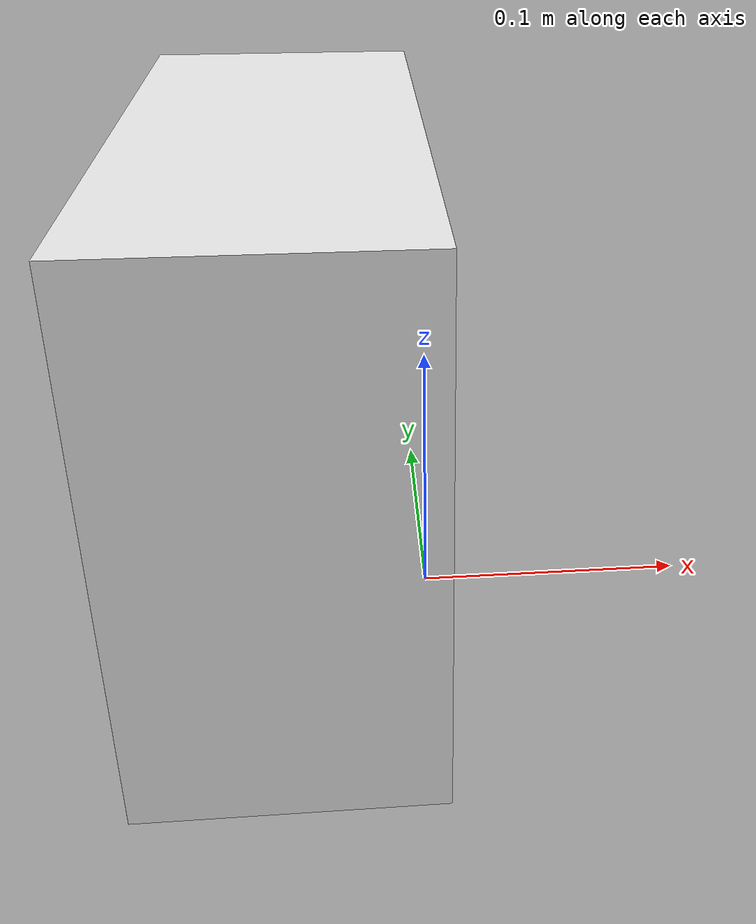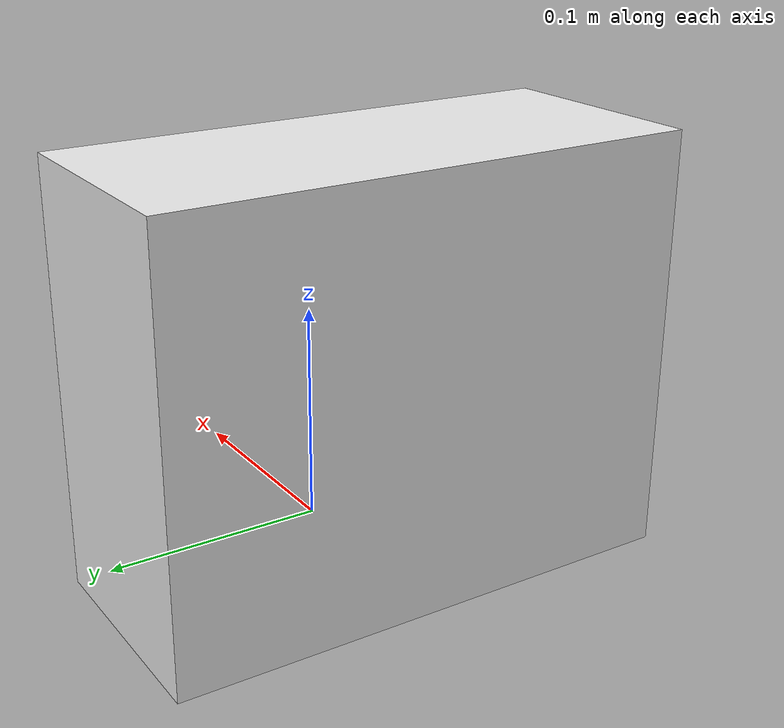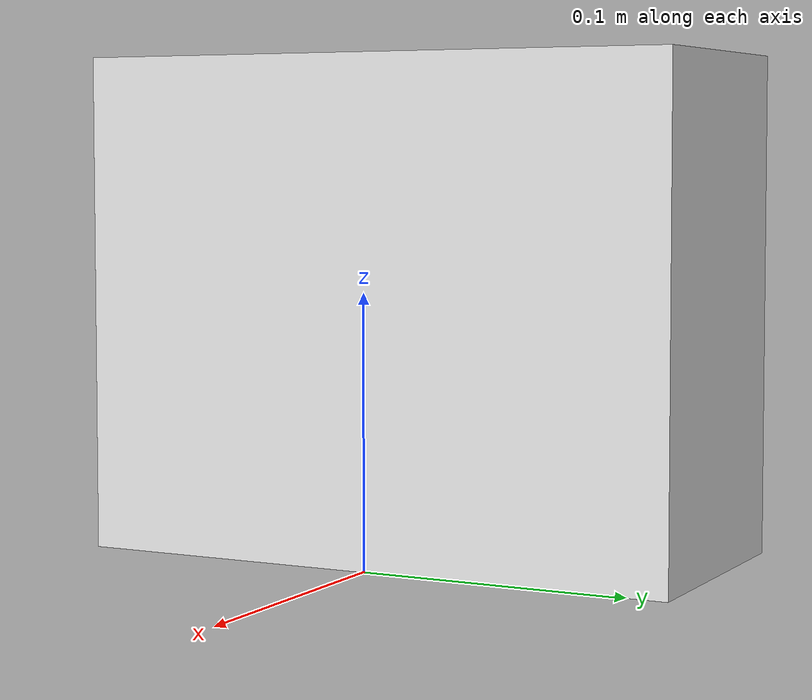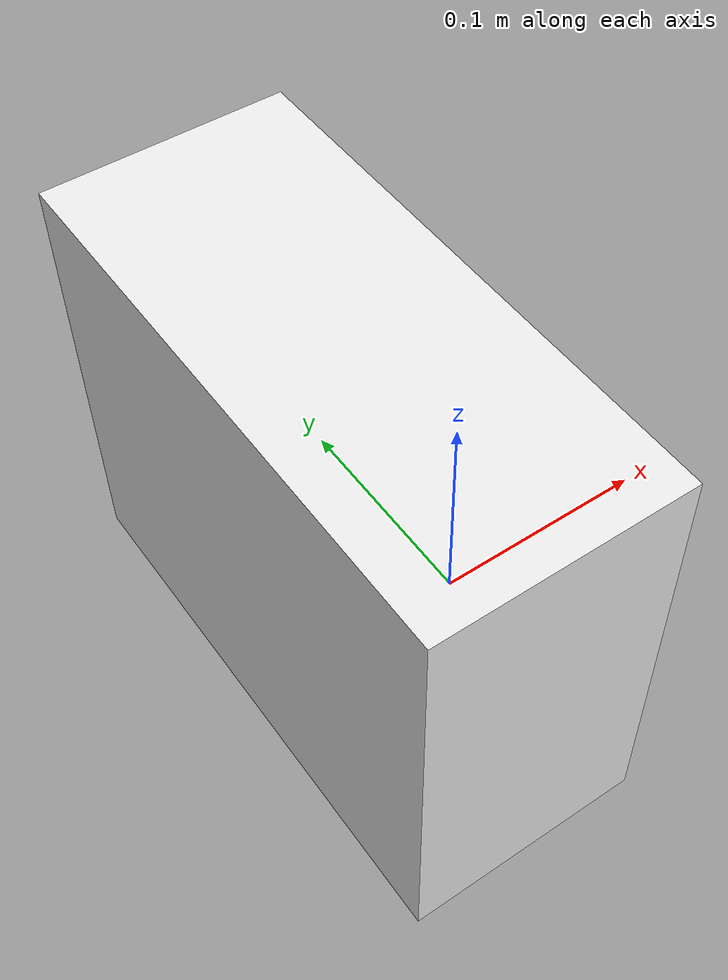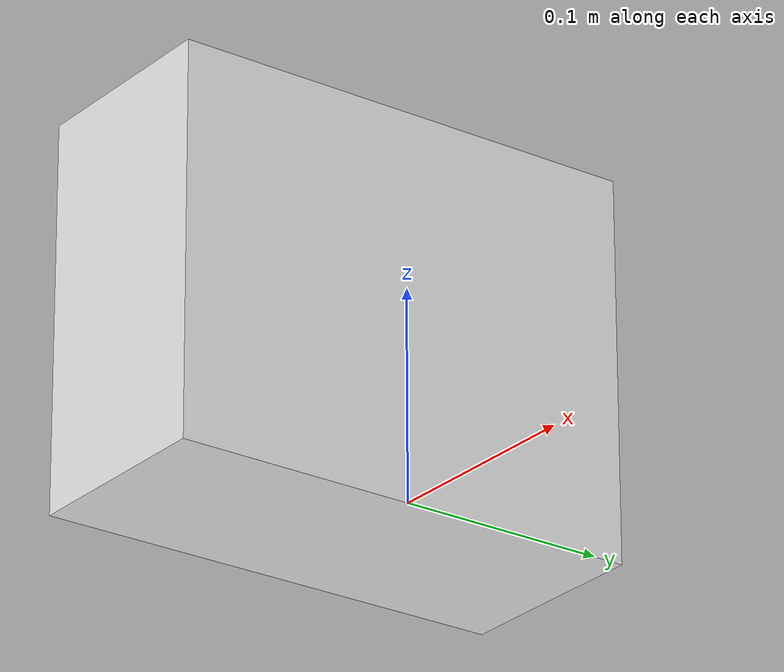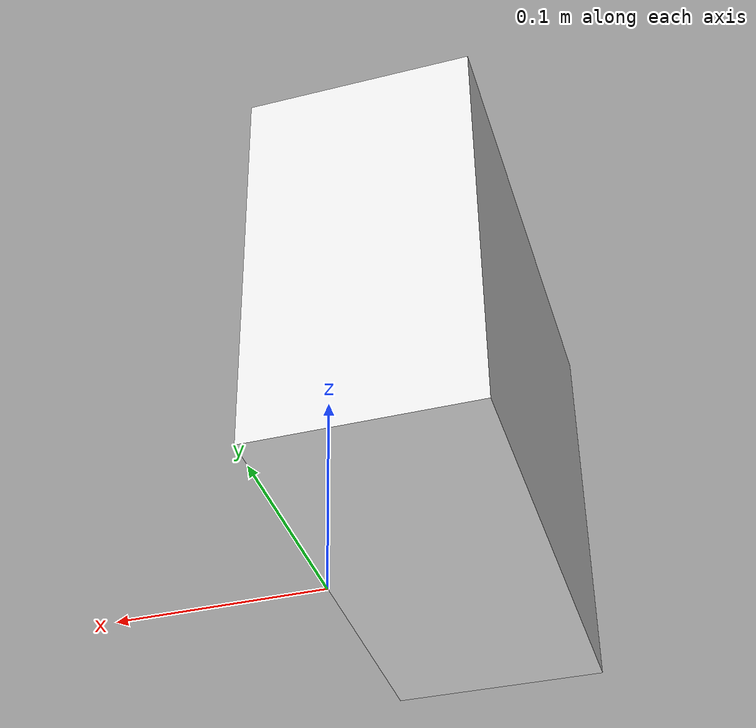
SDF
<?xml version="1.0" ?>
<sdf version="1.6">
	<model name="robobo_box">
		<link name="box">
		    <inertial>
			<mass>1</mass>
			<inertia>
			    <ixx>0.167</ixx>
			    <ixy>0</ixy>
			    <ixz>0</ixz>
			    <iyy>0.167</iyy>
			    <iyz>0</iyz>
			    <izz>0167</izz>
			</inertia>
		    </inertial>
		    <self_collide>1</self_collide>
		    <collision name="collision">
			<pose>-0.05 0 0.0925 0 0 0</pose>
		        <geometry>
		            <box>
		                <size>0.1 0.23 0.185</size>
		            </box>
		        </geometry>
		    </collision>
		    <visual name="visual">
		        <pose>-0.05 0 0.0925 0 0 0</pose>
		        <geometry>
		            <box>
		                <size>0.1 0.23 0.185</size>
		            </box>
		        </geometry>
				<material>
                    		<script>
                        		<uri>file://media/materials/scripts/gazebo.material</uri>
                        		<name>Gazebo/White</name>
                    		</script>
            	</material>
		    </visual>
		</link>
	</model>
</sdf>
